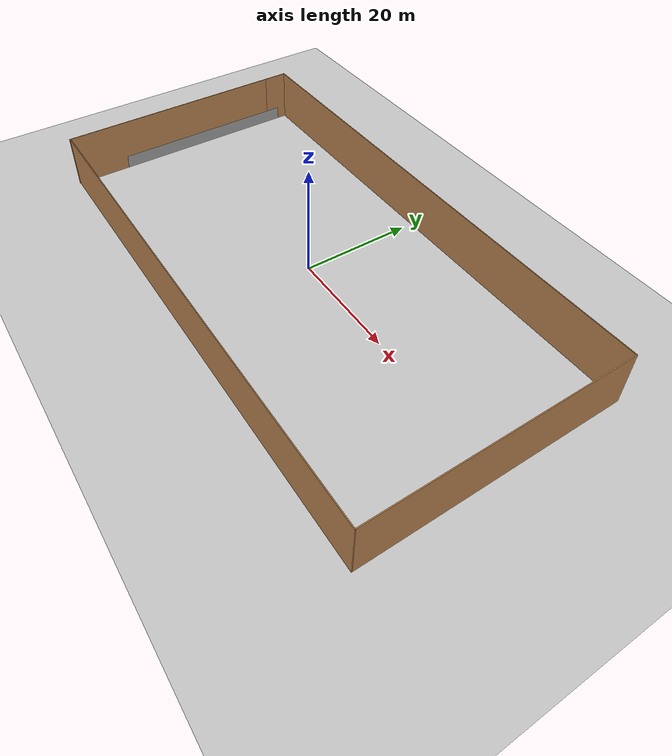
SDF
<sdf version="1.7">
 <world name="default">
  <light name="sun" type="directional">
   <pose>0 0 10 0 -0 0</pose>
   <diffuse>0.8 0.8 0.8 1</diffuse>
   <specular>0.2 0.2 0.2 1</specular>
   <attenuation>
    <range>1000</range>
    <constant>0.9</constant>
    <linear>0.01</linear>
    <quadratic>0.001</quadratic>
   </attenuation>
   <direction>-0.5 0.1 -0.9</direction>
   <spot><inner_angle>0</inner_angle><outer_angle>0</outer_angle><falloff>0</falloff></spot>
  </light>
  <model name="ground_plane">
   <static>1</static>
   <link name="link">
    <collision name="collision">
     <geometry><plane><normal>0 0 1</normal><size>100 100</size></plane></geometry>
     <surface>
      <contact><collide_bitmask>65535</collide_bitmask></contact>
      <friction><ode><mu>100</mu><mu2>50</mu2></ode></friction>
     </surface>
    </collision>
    <visual name="visual">
     <cast_shadows>0</cast_shadows>
     <geometry><plane><normal>0 0 1</normal><size>100 100</size></plane></geometry>
     <material>
      <script><uri>file://media/materials/scripts/gazebo.material</uri><name>Gazebo/Grey</name></script>
     </material>
    </visual>
   </link>
  </model>
  <gravity>0 0 -9.8</gravity>
  <magnetic_field>6e-06 2.3e-05 -4.2e-05</magnetic_field>
  <atmosphere type="adiabatic"/>
  <physics type="ode">
   <max_step_size>0.001</max_step_size>
   <real_time_factor>1</real_time_factor>
   <real_time_update_rate>1000</real_time_update_rate>
  </physics>
  <scene><ambient>0.4 0.4 0.4 1</ambient><background>0.7 0.7 0.7 1</background><shadows>1</shadows></scene>
  <spherical_coordinates>
   <surface_model>EARTH_WGS84</surface_model>
   <latitude_deg>0</latitude_deg>
   <longitude_deg>0</longitude_deg>
   <elevation>0</elevation>
   <heading_deg>0</heading_deg>
  </spherical_coordinates>
  <model name="mod.world">
   <pose>1.365 -0.995999 0 0 -0 0</pose>
   <link name="Wall_4">
    <collision name="Wall_4_Collision">
     <geometry><box><size>44.5 0.15 2.5</size></box></geometry>
     <pose>0 0 1.25 0 -0 0</pose>
    </collision>
    <visual name="Wall_4_Visual">
     <pose>0 0 1.25 0 -0 0</pose>
     <geometry><box><size>44.5 0.15 2.5</size></box></geometry>
     <material>
      <script><uri>file://media/materials/scripts/gazebo.material</uri><name>Gazebo/Grey</name></script>
      <ambient>1 1 1 1</ambient>
     </material>
     <meta><layer>0</layer></meta>
    </visual>
    <pose>-45.5498 -0.924881 0 0 -0 -1.57081</pose>
   </link>
   <link name="Wall_5">
    <collision name="Wall_5_Collision">
     <geometry><box><size>42 0.15 10</size></box></geometry>
     <pose>0 0 5 0 -0 0</pose>
    </collision>
    <visual name="Wall_5_Visual">
     <pose>0 0 5 0 -0 0</pose>
     <geometry><box><size>42 0.15 10</size></box></geometry>
     <material>
      <script><uri>file://media/materials/scripts/gazebo.material</uri><name>Gazebo/Wood</name></script>
      <ambient>1 1 1 1</ambient>
     </material>
     <meta><layer>0</layer></meta>
    </visual>
    <pose>-45.55 -2.175 0 0 -0 1.5708</pose>
   </link>
   <link name="Wall_6">
    <collision name="Wall_6_Collision">
     <geometry><box><size>4.5 0.15 10</size></box></geometry>
     <pose>0 0 5 0 -0 0</pose>
    </collision>
    <visual name="Wall_6_Visual">
     <pose>0 0 5 0 -0 0</pose>
     <geometry><box><size>4.5 0.15 10</size></box></geometry>
     <material>
      <script><uri>file://media/materials/scripts/gazebo.material</uri><name>Gazebo/Wood</name></script>
      <ambient>1 1 1 1</ambient>
     </material>
     <meta><layer>0</layer></meta>
    </visual>
    <pose>-45.55 20.925 0 0 -0 1.5708</pose>
   </link>
   <link name="Wall_7">
    <collision name="Wall_7_Collision">
     <geometry><box><size>91.25 0.15 10</size></box></geometry>
     <pose>0 0 5 0 -0 0</pose>
    </collision>
    <visual name="Wall_7_Visual">
     <pose>0 0 5 0 -0 0</pose>
     <geometry><box><size>91.25 0.15 10</size></box></geometry>
     <material>
      <script><uri>file://media/materials/scripts/gazebo.material</uri><name>Gazebo/Wood</name></script>
      <ambient>1 1 1 1</ambient>
     </material>
     <meta><layer>0</layer></meta>
    </visual>
    <pose>-2e-06 23.1 0 0 -0 0</pose>
   </link>
   <link name="Wall_8">
    <collision name="Wall_8_Collision">
     <geometry><box><size>46.25 0.15 10</size></box></geometry>
     <pose>0 0 5 0 -0 0</pose>
    </collision>
    <visual name="Wall_8_Visual">
     <pose>0 0 5 0 -0 0</pose>
     <geometry><box><size>46.25 0.15 10</size></box></geometry>
     <material>
      <script><uri>file://media/materials/scripts/gazebo.material</uri><name>Gazebo/Wood</name></script>
      <ambient>1 1 1 1</ambient>
     </material>
     <meta><layer>0</layer></meta>
    </visual>
    <pose>45.55 0.049999 0 0 -0 -1.5708</pose>
   </link>
   <link name="Wall_9">
    <collision name="Wall_9_Collision">
     <geometry><box><size>91.25 0.15 10</size></box></geometry>
     <pose>0 0 5 0 -0 0</pose>
    </collision>
    <visual name="Wall_9_Visual">
     <pose>0 0 5 0 -0 0</pose>
     <geometry><box><size>91.25 0.15 10</size></box></geometry>
     <material>
      <script><uri>file://media/materials/scripts/gazebo.material</uri><name>Gazebo/Wood</name></script>
      <ambient>1 1 1 1</ambient>
     </material>
     <meta><layer>0</layer></meta>
    </visual>
    <pose>-2e-06 -23 0 0 -0 3.14159</pose>
   </link>
   <static>1</static>
  </model>
 </world>
</sdf>
